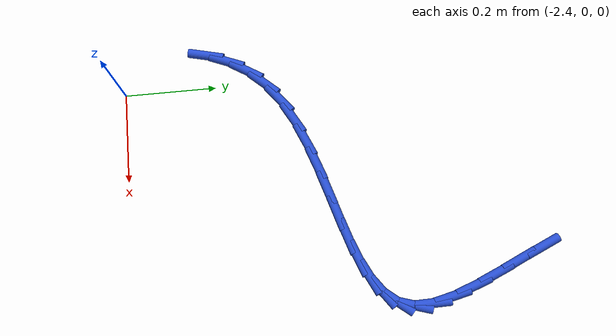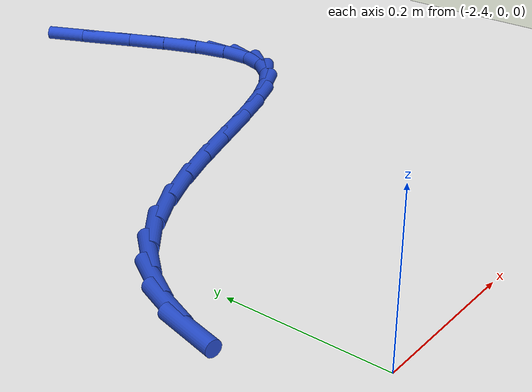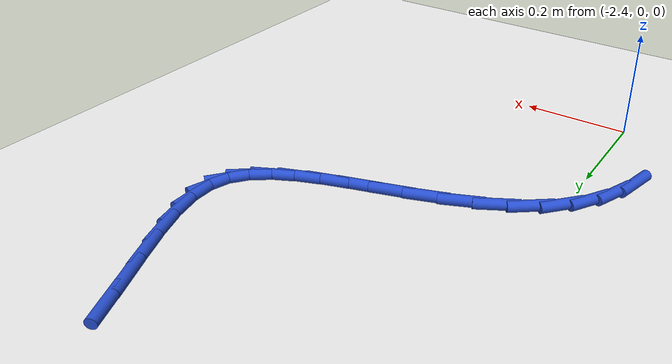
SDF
<sdf version="1.6">
 <world name="default">
  <model name="ground_plane">
   <static>1</static>
   <link name="link">
    <collision name="collision">
     <geometry><plane><normal>0 0 1</normal><size>100 100</size></plane></geometry>
     <surface><friction><ode><mu>100</mu><mu2>50</mu2></ode></friction></surface>
    </collision>
    <visual name="visual">
     <cast_shadows>0</cast_shadows>
     <geometry><plane><normal>0 0 1</normal><size>100 100</size></plane></geometry>
     <material>
      <script><uri>file://media/materials/scripts/gazebo.material</uri><name>Gazebo/WhiteGlow</name></script>
     </material>
    </visual>
   </link>
  </model>
  <model name="line">
   <link name="link_68">
    <pose>-1.973076740995524 0.8708859556302413 0.01 0 1.57 -1.1532991819926677</pose>
    <collision name="collision">
     <geometry><cylinder><radius>0.01</radius><length>0.08</length></cylinder></geometry>
    </collision>
    <visual name="visual">
     <material>
      <script><name>Gazebo/Blue</name><uri>file://media/materials/scripts/gazebo.material</uri></script>
     </material>
     <geometry><cylinder><radius>0.01</radius><length>0.08</length></cylinder></geometry>
    </visual>
   </link>
   <link name="link_69">
    <pose>-1.9490280672662557 0.8166702460041186 0.01 0 1.57 -1.1432187772029583</pose>
    <collision name="collision">
     <geometry><cylinder><radius>0.01</radius><length>0.08</length></cylinder></geometry>
    </collision>
    <visual name="visual">
     <material>
      <script><name>Gazebo/Blue</name><uri>file://media/materials/scripts/gazebo.material</uri></script>
     </material>
     <geometry><cylinder><radius>0.01</radius><length>0.08</length></cylinder></geometry>
    </visual>
   </link>
   <link name="link_70">
    <pose>-1.9251079432354623 0.7641784130961786 0.01 0 1.57 -1.164731607844907</pose>
    <collision name="collision">
     <geometry><cylinder><radius>0.01</radius><length>0.08</length></cylinder></geometry>
    </collision>
    <visual name="visual">
     <material>
      <script><name>Gazebo/Blue</name><uri>file://media/materials/scripts/gazebo.material</uri></script>
     </material>
     <geometry><cylinder><radius>0.01</radius><length>0.08</length></cylinder></geometry>
    </visual>
   </link>
   <link name="link_71">
    <pose>-1.903579486990723 0.7141076358794591 0.01 0 1.57 -1.2257922560021717</pose>
    <collision name="collision">
     <geometry><cylinder><radius>0.01</radius><length>0.08</length></cylinder></geometry>
    </collision>
    <visual name="visual">
     <material>
      <script><name>Gazebo/Blue</name><uri>file://media/materials/scripts/gazebo.material</uri></script>
     </material>
     <geometry><cylinder><radius>0.01</radius><length>0.08</length></cylinder></geometry>
    </visual>
   </link>
   <link name="link_72">
    <pose>-1.886705816619617 0.6671550933269992 0.01 0 1.57 -1.3439744929055737</pose>
    <collision name="collision">
     <geometry><cylinder><radius>0.01</radius><length>0.08</length></cylinder></geometry>
    </collision>
    <visual name="visual">
     <material>
      <script><name>Gazebo/Blue</name><uri>file://media/materials/scripts/gazebo.material</uri></script>
     </material>
     <geometry><cylinder><radius>0.01</radius><length>0.08</length></cylinder></geometry>
    </visual>
   </link>
   <link name="link_73">
    <pose>-1.876750050209723 0.624017964411836 0.01 0 1.57 -1.5507406689815804</pose>
    <collision name="collision">
     <geometry><cylinder><radius>0.01</radius><length>0.08</length></cylinder></geometry>
    </collision>
    <visual name="visual">
     <material>
      <script><name>Gazebo/Blue</name><uri>file://media/materials/scripts/gazebo.material</uri></script>
     </material>
     <geometry><cylinder><radius>0.01</radius><length>0.08</length></cylinder></geometry>
    </visual>
   </link>
   <link name="link_74">
    <pose>-1.8759753058486206 0.5853934281070077 0.01 0 1.57 1.2622620692266882</pose>
    <collision name="collision">
     <geometry><cylinder><radius>0.01</radius><length>0.08</length></cylinder></geometry>
    </collision>
    <visual name="visual">
     <material>
      <script><name>Gazebo/Blue</name><uri>file://media/materials/scripts/gazebo.material</uri></script>
     </material>
     <geometry><cylinder><radius>0.01</radius><length>0.08</length></cylinder></geometry>
    </visual>
   </link>
   <link name="link_75">
    <pose>-1.886627299951994 0.5519714356031784 0.01 0 1.57 0.8878031181250129</pose>
    <collision name="collision">
     <geometry><cylinder><radius>0.01</radius><length>0.08</length></cylinder></geometry>
    </collision>
    <visual name="visual">
     <material>
      <script><name>Gazebo/Blue</name><uri>file://media/materials/scripts/gazebo.material</uri></script>
     </material>
     <geometry><cylinder><radius>0.01</radius><length>0.08</length></cylinder></geometry>
    </visual>
   </link>
   <link name="link_76">
    <pose>-1.909512378010174 0.5238440955464572 0.01 0 1.57 0.618217324122047</pose>
    <collision name="collision">
     <geometry><cylinder><radius>0.01</radius><length>0.08</length></cylinder></geometry>
    </collision>
    <visual name="visual">
     <material>
      <script><name>Gazebo/Blue</name><uri>file://media/materials/scripts/gazebo.material</uri></script>
     </material>
     <geometry><cylinder><radius>0.01</radius><length>0.08</length></cylinder></geometry>
    </visual>
   </link>
   <link name="link_77">
    <pose>-1.9429428647434916 0.5000676253494684 0.01 0 1.57 0.4531796947097287</pose>
    <collision name="collision">
     <geometry><cylinder><radius>0.01</radius><length>0.08</length></cylinder></geometry>
    </collision>
    <visual name="visual">
     <material>
      <script><name>Gazebo/Blue</name><uri>file://media/materials/scripts/gazebo.material</uri></script>
     </material>
     <geometry><cylinder><radius>0.01</radius><length>0.08</length></cylinder></geometry>
    </visual>
   </link>
   <link name="link_78">
    <pose>-1.9849825608152734 0.47959501798699083 0.01 0 1.57 0.3578432331282109</pose>
    <collision name="collision">
     <geometry><cylinder><radius>0.01</radius><length>0.08</length></cylinder></geometry>
    </collision>
    <visual name="visual">
     <material>
      <script><name>Gazebo/Blue</name><uri>file://media/materials/scripts/gazebo.material</uri></script>
     </material>
     <geometry><cylinder><radius>0.01</radius><length>0.08</length></cylinder></geometry>
    </visual>
   </link>
   <link name="link_79">
    <pose>-2.0336952668888446 0.4613792664338011 0.01 0 1.57 0.30803984114194716</pose>
    <collision name="collision">
     <geometry><cylinder><radius>0.01</radius><length>0.08</length></cylinder></geometry>
    </collision>
    <visual name="visual">
     <material>
      <script><name>Gazebo/Blue</name><uri>file://media/materials/scripts/gazebo.material</uri></script>
     </material>
     <geometry><cylinder><radius>0.01</radius><length>0.08</length></cylinder></geometry>
    </visual>
   </link>
   <link name="link_80">
    <pose>-2.08714478362753 0.44437336366467745 0.01 0 1.57 0.29093516612739784</pose>
    <collision name="collision">
     <geometry><cylinder><radius>0.01</radius><length>0.08</length></cylinder></geometry>
    </collision>
    <visual name="visual">
     <material>
      <script><name>Gazebo/Blue</name><uri>file://media/materials/scripts/gazebo.material</uri></script>
     </material>
     <geometry><cylinder><radius>0.01</radius><length>0.08</length></cylinder></geometry>
    </visual>
   </link>
   <link name="link_81">
    <pose>-2.143394911694655 0.427530302654397 0.01 0 1.57 0.30095256134408305</pose>
    <collision name="collision">
     <geometry><cylinder><radius>0.01</radius><length>0.08</length></cylinder></geometry>
    </collision>
    <visual name="visual">
     <material>
      <script><name>Gazebo/Blue</name><uri>file://media/materials/scripts/gazebo.material</uri></script>
     </material>
     <geometry><cylinder><radius>0.01</radius><length>0.08</length></cylinder></geometry>
    </visual>
   </link>
   <link name="link_82">
    <pose>-2.2005094517535473 0.40980307637773744 0.01 0 1.57 0.33736510717951823</pose>
    <collision name="collision">
     <geometry><cylinder><radius>0.01</radius><length>0.08</length></cylinder></geometry>
    </collision>
    <visual name="visual">
     <material>
      <script><name>Gazebo/Blue</name><uri>file://media/materials/scripts/gazebo.material</uri></script>
     </material>
     <geometry><cylinder><radius>0.01</radius><length>0.08</length></cylinder></geometry>
    </visual>
   </link>
   <link name="link_83">
    <pose>-2.2565522044675297 0.3901446778094767 0.01 0 1.57 0.40341564405396885</pose>
    <collision name="collision">
     <geometry><cylinder><radius>0.01</radius><length>0.08</length></cylinder></geometry>
    </collision>
    <visual name="visual">
     <material>
      <script><name>Gazebo/Blue</name><uri>file://media/materials/scripts/gazebo.material</uri></script>
     </material>
     <geometry><cylinder><radius>0.01</radius><length>0.08</length></cylinder></geometry>
    </visual>
   </link>
   <link name="link_84">
    <pose>-2.309586970499929 0.3675080999243918 0.01 0 1.57 0.5062205662328486</pose>
    <collision name="collision">
     <geometry><cylinder><radius>0.01</radius><length>0.08</length></cylinder></geometry>
    </collision>
    <visual name="visual">
     <material>
      <script><name>Gazebo/Blue</name><uri>file://media/materials/scripts/gazebo.material</uri></script>
     </material>
     <geometry><cylinder><radius>0.01</radius><length>0.08</length></cylinder></geometry>
    </visual>
   </link>
   <link name="link_85">
    <pose>-2.3576775505140697 0.34084633569726086 0.01 0 1.57 0.6556380966834249</pose>
    <collision name="collision">
     <geometry><cylinder><radius>0.01</radius><length>0.08</length></cylinder></geometry>
    </collision>
    <visual name="visual">
     <material>
      <script><name>Gazebo/Blue</name><uri>file://media/materials/scripts/gazebo.material</uri></script>
     </material>
     <geometry><cylinder><radius>0.01</radius><length>0.08</length></cylinder></geometry>
    </visual>
   </link>
   <link name="link_86">
    <pose>-2.3989128618126854 0.30913064124748046 0.01 0 1.57 0.8372037314220584</pose>
    <collision name="collision">
     <geometry><cylinder><radius>0.01</radius><length>0.08</length></cylinder></geometry>
    </collision>
    <visual name="visual">
     <material>
      <script><name>Gazebo/Blue</name><uri>file://media/materials/scripts/gazebo.material</uri></script>
     </material>
     <geometry><cylinder><radius>0.01</radius><length>0.08</length></cylinder></geometry>
    </visual>
   </link>
   <link name="link_87">
    <pose>-2.4323500220021153 0.2720362833655599 0.01 0 1.57 1.0161559835718779</pose>
    <collision name="collision">
     <geometry><cylinder><radius>0.01</radius><length>0.08</length></cylinder></geometry>
    </collision>
    <visual name="visual">
     <material>
      <script><name>Gazebo/Blue</name><uri>file://media/materials/scripts/gazebo.material</uri></script>
     </material>
     <geometry><cylinder><radius>0.01</radius><length>0.08</length></cylinder></geometry>
    </visual>
   </link>
   <link name="link_88">
    <pose>-2.4582991465624806 0.2301496253070057 0.01 0 1.57 1.1820463625686763</pose>
    <collision name="collision">
     <geometry><cylinder><radius>0.01</radius><length>0.08</length></cylinder></geometry>
    </collision>
    <visual name="visual">
     <material>
      <script><name>Gazebo/Blue</name><uri>file://media/materials/scripts/gazebo.material</uri></script>
     </material>
     <geometry><cylinder><radius>0.01</radius><length>0.08</length></cylinder></geometry>
    </visual>
   </link>
   <link name="link_89">
    <pose>-2.4771536169665618 0.18411757580242033 0.01 0 1.57 1.3301821106308436</pose>
    <collision name="collision">
     <geometry><cylinder><radius>0.01</radius><length>0.08</length></cylinder></geometry>
    </collision>
    <visual name="visual">
     <material>
      <script><name>Gazebo/Blue</name><uri>file://media/materials/scripts/gazebo.material</uri></script>
     </material>
     <geometry><cylinder><radius>0.01</radius><length>0.08</length></cylinder></geometry>
    </visual>
   </link>
  </model>
 </world>
</sdf>
